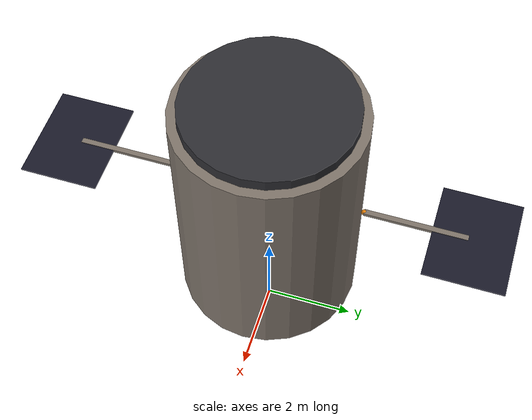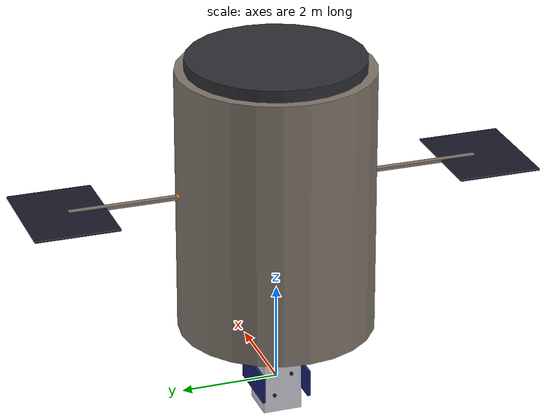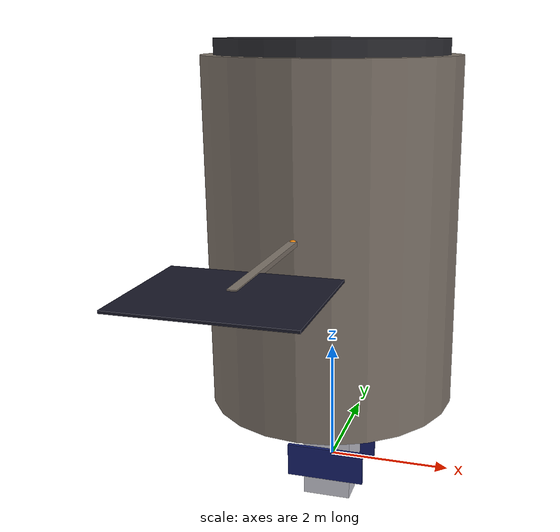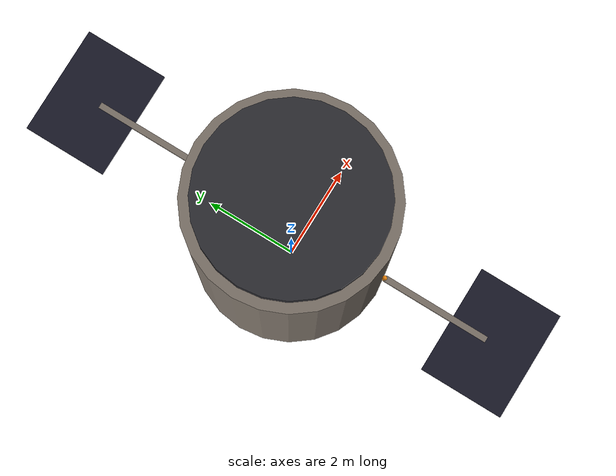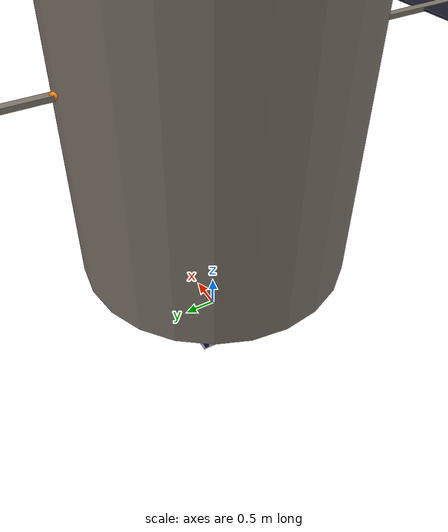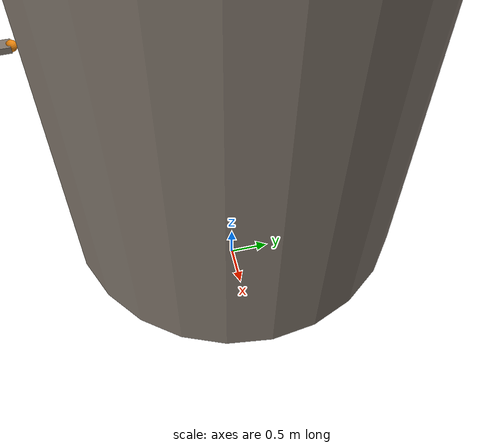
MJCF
<?xml version="1.0" encoding="utf-8"?>
<mujoco model="detumble_rl">

  <compiler angle="radian" autolimits="true"/>

  <option
    gravity="0 0 0"
    timestep="0.01"
    integrator="RK4"
    cone="elliptic"
    impratio="10"
    tolerance="1e-10">
    <flag contact="disable"/>
  </option>

  <size njmax="500" nconmax="100"/>

  <visual>
    <global azimuth="120" elevation="-25" fovy="60"/>
    <quality shadowsize="2048" offsamples="8"/>
    <headlight ambient="0.15 0.15 0.20" diffuse="0.8 0.8 0.9" specular="0.3 0.3 0.3"/>
    <rgba haze="0.0 0.0 0.0 0"/>
    <map stiffness="100" stiffnessrot="100" znear="0.01" zfar="500"/>
  </visual>

  <asset>
    <texture name="starfield" type="skybox" builtin="gradient"
             rgb1="0.00 0.00 0.02"
             rgb2="0.01 0.01 0.04"
             width="512" height="512"
             mark="random" markrgb="1 1 1" random="0.005"/>

    <material name="chaser_body_mat"
              rgba="0.78 0.78 0.82 1.0"
              specular="0.85" shininess="0.7" reflectance="0.4"/>

    <material name="chaser_panel_mat"
              rgba="0.08 0.12 0.42 1.0"
              specular="0.6" shininess="0.5"/>

    <material name="debris_body_mat"
              rgba="0.50 0.46 0.42 1.0"
              specular="0.25" shininess="0.15"/>

    <material name="debris_panel_mat"
              rgba="0.10 0.10 0.16 1.0"
              specular="0.15" shininess="0.1"/>

    <material name="thruster_mat"
              rgba="0.18 0.18 0.20 1.0"
              specular="0.95" shininess="0.9"/>

    <material name="grab_point_mat"
              rgba="0.85 0.12 0.12 1.0"
              specular="0.5" shininess="0.4"/>

    <material name="flex_joint_mat"
              rgba="0.92 0.52 0.05 1.0"
              specular="0.4" shininess="0.3"/>

    <material name="invisible_mat"
              rgba="0 0 0 0"/>
  </asset>

  <default>
    <default class="chaser">
      <geom condim="3" friction="0.8 0.02 0.001"/>
      <joint damping="0.0" stiffness="0.0" armature="0.01"/>
    </default>
    <default class="debris">
      <geom condim="3" friction="0.6 0.02 0.001"/>
    </default>
    <default class="flex_panel">
      <joint type="hinge" limited="true" range="-0.5 0.5"
             damping="0.1" stiffness="8.0" armature="0.001"/>
    </default>
    <default class="rcs_thruster">
      <site size="0.035 0.035 0.07" type="cylinder"/>
    </default>
  </default>

  <worldbody>

    <body name="chaser" pos="0 0 0" quat="1 0 0 0">
      <freejoint name="chaser_free"/>
      <inertial pos="0 0 0" mass="400" diaginertia="120 150 100"/>

      <geom name="chaser_bus"
            type="box" size="0.40 0.40 0.60"
            material="chaser_body_mat" class="chaser"/>

      <geom name="chaser_panel_py"
            type="box" size="0.65 0.03 0.28"
            pos="0 0.48 0.05"
            material="chaser_panel_mat" class="chaser"/>
      <geom name="chaser_panel_ny"
            type="box" size="0.65 0.03 0.28"
            pos="0 -0.48 0.05"
            material="chaser_panel_mat" class="chaser"/>

      <geom name="chaser_docking_ring"
            type="cylinder" size="0.16 0.05"
            pos="0 0 0.65"
            material="grab_point_mat" class="chaser"/>

      <site name="imu" pos="0 0 0" size="0.025" type="sphere"
            material="flex_joint_mat"/>

      <site name="rcs_px_1" pos="0.41  0.18  0.22" euler="0  1.5708 0" material="thruster_mat" class="rcs_thruster"/>
      <site name="rcs_px_2" pos="0.41 -0.18 -0.22" euler="0  1.5708 0" material="thruster_mat" class="rcs_thruster"/>
      <site name="rcs_nx_1" pos="-0.41  0.18 -0.22" euler="0 -1.5708 0" material="thruster_mat" class="rcs_thruster"/>
      <site name="rcs_nx_2" pos="-0.41 -0.18  0.22" euler="0 -1.5708 0" material="thruster_mat" class="rcs_thruster"/>
      <site name="rcs_py_1" pos=" 0.18 0.41  0.22" euler="-1.5708 0 0" material="thruster_mat" class="rcs_thruster"/>
      <site name="rcs_py_2" pos="-0.18 0.41 -0.22" euler="-1.5708 0 0" material="thruster_mat" class="rcs_thruster"/>
      <site name="rcs_ny_1" pos=" 0.18 -0.41 -0.22" euler="1.5708 0 0" material="thruster_mat" class="rcs_thruster"/>
      <site name="rcs_ny_2" pos="-0.18 -0.41  0.22" euler="1.5708 0 0" material="thruster_mat" class="rcs_thruster"/>
      <site name="rcs_pz_1" pos=" 0.18  0.18 0.61" euler="0 0 0" material="thruster_mat" class="rcs_thruster"/>
      <site name="rcs_pz_2" pos="-0.18 -0.18 0.61" euler="0 0 0" material="thruster_mat" class="rcs_thruster"/>
      <site name="rcs_nz_1" pos=" 0.18 -0.18 -0.61" euler="3.1416 0 0" material="thruster_mat" class="rcs_thruster"/>
      <site name="rcs_nz_2" pos="-0.18  0.18 -0.61" euler="3.1416 0 0" material="thruster_mat" class="rcs_thruster"/>

      <body name="rw_1" pos="0 0 0">
        <inertial pos="0 0 0" mass="10" diaginertia="0.08 0.08 0.16"/>
        <joint name="rw_joint_1" type="hinge" axis="0.57735 0 0.81650" damping="0.001" frictionloss="0.01"/>
        <geom type="cylinder" size="0.15 0.05" material="thruster_mat" class="chaser"/>
      </body>
      <body name="rw_2" pos="0 0 0">
        <inertial pos="0 0 0" mass="10" diaginertia="0.08 0.08 0.16"/>
        <joint name="rw_joint_2" type="hinge" axis="0 0.57735 0.81650" damping="0.001" frictionloss="0.01"/>
        <geom type="cylinder" size="0.15 0.05" material="thruster_mat" class="chaser"/>
      </body>
      <body name="rw_3" pos="0 0 0">
        <inertial pos="0 0 0" mass="10" diaginertia="0.08 0.08 0.16"/>
        <joint name="rw_joint_3" type="hinge" axis="-0.57735 0 0.81650" damping="0.001" frictionloss="0.01"/>
        <geom type="cylinder" size="0.15 0.05" material="thruster_mat" class="chaser"/>
      </body>
      <body name="rw_4" pos="0 0 0">
        <inertial pos="0 0 0" mass="10" diaginertia="0.08 0.08 0.16"/>
        <joint name="rw_joint_4" type="hinge" axis="0 -0.57735 0.81650" damping="0.001" frictionloss="0.01"/>
        <geom type="cylinder" size="0.15 0.05" material="thruster_mat" class="chaser"/>
      </body>

    </body>
    <body name="debris_core" pos="0 0 4" quat="1 0 0 0">
      <freejoint name="debris_free"/>
      <inertial pos="0 0 0" mass="3000" diaginertia="12000 12000 1500"/>

      <geom name="debris_main_body"
            type="cylinder" size="2.0 2.75"
            material="debris_body_mat" class="debris"/>

      <geom name="debris_top_cap"
            type="cylinder" size="1.80 0.12"
            pos="0 0 2.87"
            material="thruster_mat" class="debris"/>

      <geom name="debris_nozzle"
            type="cylinder" size="0.40 0.30"
            pos="0 0 -3.05"
            material="grab_point_mat" class="debris"/>

      <site name="debris_paf" pos="0 0 -3.05" size="0.06" type="sphere"
            material="grab_point_mat"/>
      <site name="debris_imu" pos="0 0 0" size="0.025" type="sphere"
            material="flex_joint_mat"/>

      <body name="flex_boom_py" pos="0 2.05 0.3">
        <joint name="flex_joint_py" type="hinge" axis="1 0 0"
               limited="true" range="-0.5 0.5"
               damping="8.0" stiffness="8.0" class="flex_panel"/>
        <geom name="flex_boom_py_strut"
              type="box" size="0.06 1.10 0.035"
              pos="0 1.10 0"
              material="debris_body_mat" class="debris"/>
        <geom name="flex_panel_py_surf"
              type="box" size="1.10 0.85 0.018"
              pos="0 2.30 0"
              material="debris_panel_mat" class="debris"/>
        <site name="flex_site_py" pos="0 0 0" size="0.055" type="sphere"
              material="flex_joint_mat"/>
      </body>

      <body name="flex_boom_ny" pos="0 -2.05 0.3">
        <joint name="flex_joint_ny" type="hinge" axis="1 0 0"
               limited="true" range="-0.5 0.5"
               damping="8.0" stiffness="8.0" class="flex_panel"/>
        <geom name="flex_boom_ny_strut"
              type="box" size="0.06 1.10 0.035"
              pos="0 -1.10 0"
              material="debris_body_mat" class="debris"/>
        <geom name="flex_panel_ny_surf"
              type="box" size="1.10 0.85 0.018"
              pos="0 -2.30 0"
              material="debris_panel_mat" class="debris"/>
        <site name="flex_site_ny" pos="0 0 0" size="0.055" type="sphere"
              material="flex_joint_mat"/>
      </body>

      <body name="flex_boom_px" pos="2.05 0 0.3">
        <joint name="flex_joint_px" type="hinge" axis="0 1 0"
               limited="true" range="-0.1 0.1"
               damping="12.0" stiffness="80.0" class="flex_panel"/>
        <geom name="flex_boom_px_geom"
              type="cylinder" size="0.05 0.90"
              pos="0.90 0 0"
              material="invisible_mat" class="debris"/>
      </body>

    </body>
    </worldbody>

  <equality>
    <weld name="capture_weld" body1="chaser" body2="debris_core" relpose="0 0 4 1 0 0 0"/>
  </equality>

  <sensor>
    <gyro         name="imu_gyro"   site="imu" noise="0.0001"/>
    <gyro         name="debris_gyro" site="debris_imu" noise="0.0001"/>
    <framequat    name="imu_quat"   objtype="site" objname="imu" noise="0.00015"/>
    <accelerometer name="imu_accel" site="imu" noise="0.001"/>

    <jointpos     name="flex_angle_py" joint="flex_joint_py"/>
    <jointpos     name="flex_angle_ny" joint="flex_joint_ny"/>
    <jointpos     name="flex_angle_px" joint="flex_joint_px"/>
    <jointvel     name="flex_vel_py"   joint="flex_joint_py"/>
    <jointvel     name="flex_vel_ny"   joint="flex_joint_ny"/>
    <jointvel     name="flex_vel_px"   joint="flex_joint_px"/>

    <jointvel name="rw_vel_1" joint="rw_joint_1"/>
    <jointvel name="rw_vel_2" joint="rw_joint_2"/>
    <jointvel name="rw_vel_3" joint="rw_joint_3"/>
    <jointvel name="rw_vel_4" joint="rw_joint_4"/>
  </sensor>

  <actuator>
    <general name="thr_px_1" site="rcs_px_1" gear="0 0 20 0 0 0" ctrlrange="0 1" ctrllimited="true" forcelimited="true" forcerange="0 20"/>
    <general name="thr_px_2" site="rcs_px_2" gear="0 0 20 0 0 0" ctrlrange="0 1" ctrllimited="true" forcelimited="true" forcerange="0 20"/>
    <general name="thr_nx_1" site="rcs_nx_1" gear="0 0 20 0 0 0" ctrlrange="0 1" ctrllimited="true" forcelimited="true" forcerange="0 20"/>
    <general name="thr_nx_2" site="rcs_nx_2" gear="0 0 20 0 0 0" ctrlrange="0 1" ctrllimited="true" forcelimited="true" forcerange="0 20"/>
    <general name="thr_py_1" site="rcs_py_1" gear="0 0 20 0 0 0" ctrlrange="0 1" ctrllimited="true" forcelimited="true" forcerange="0 20"/>
    <general name="thr_py_2" site="rcs_py_2" gear="0 0 20 0 0 0" ctrlrange="0 1" ctrllimited="true" forcelimited="true" forcerange="0 20"/>
    <general name="thr_ny_1" site="rcs_ny_1" gear="0 0 20 0 0 0" ctrlrange="0 1" ctrllimited="true" forcelimited="true" forcerange="0 20"/>
    <general name="thr_ny_2" site="rcs_ny_2" gear="0 0 20 0 0 0" ctrlrange="0 1" ctrllimited="true" forcelimited="true" forcerange="0 20"/>
    <general name="thr_pz_1" site="rcs_pz_1" gear="0 0 20 0 0 0" ctrlrange="0 1" ctrllimited="true" forcelimited="true" forcerange="0 20"/>
    <general name="thr_pz_2" site="rcs_pz_2" gear="0 0 20 0 0 0" ctrlrange="0 1" ctrllimited="true" forcelimited="true" forcerange="0 20"/>
    <general name="thr_nz_1" site="rcs_nz_1" gear="0 0 20 0 0 0" ctrlrange="0 1" ctrllimited="true" forcelimited="true" forcerange="0 20"/>
    <general name="thr_nz_2" site="rcs_nz_2" gear="0 0 20 0 0 0" ctrlrange="0 1" ctrllimited="true" forcelimited="true" forcerange="0 20"/>

    <motor name="rw_motor_1" joint="rw_joint_1" ctrlrange="-1.0 1.0" forcerange="-1.5 1.5"/>
    <motor name="rw_motor_2" joint="rw_joint_2" ctrlrange="-1.0 1.0" forcerange="-1.5 1.5"/>
    <motor name="rw_motor_3" joint="rw_joint_3" ctrlrange="-1.0 1.0" forcerange="-1.5 1.5"/>
    <motor name="rw_motor_4" joint="rw_joint_4" ctrlrange="-1.0 1.0" forcerange="-1.5 1.5"/>
  </actuator>

</mujoco>
